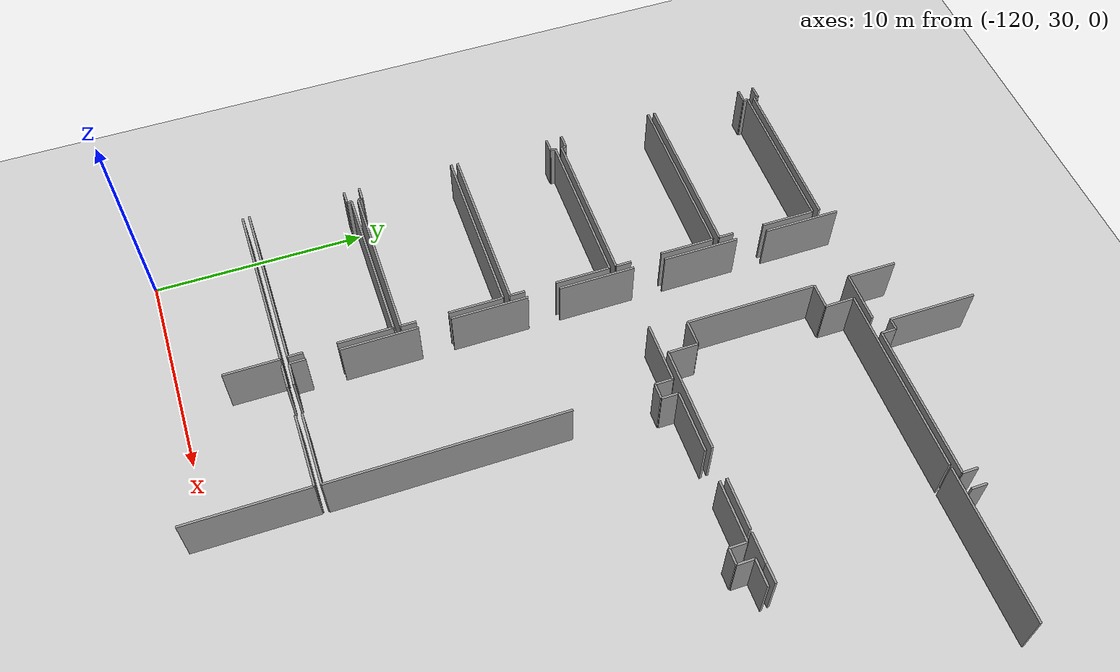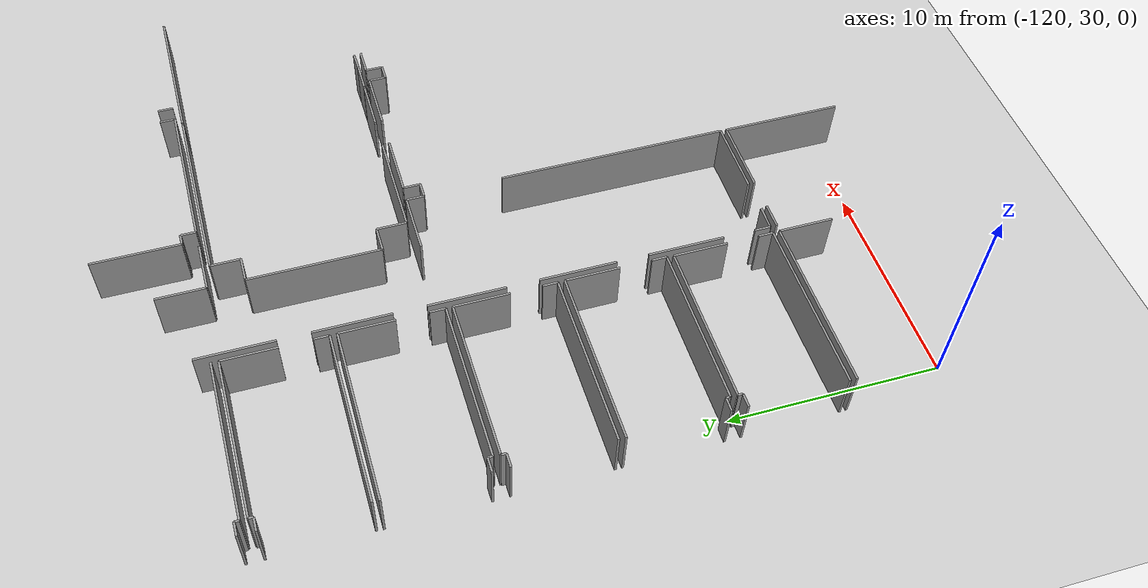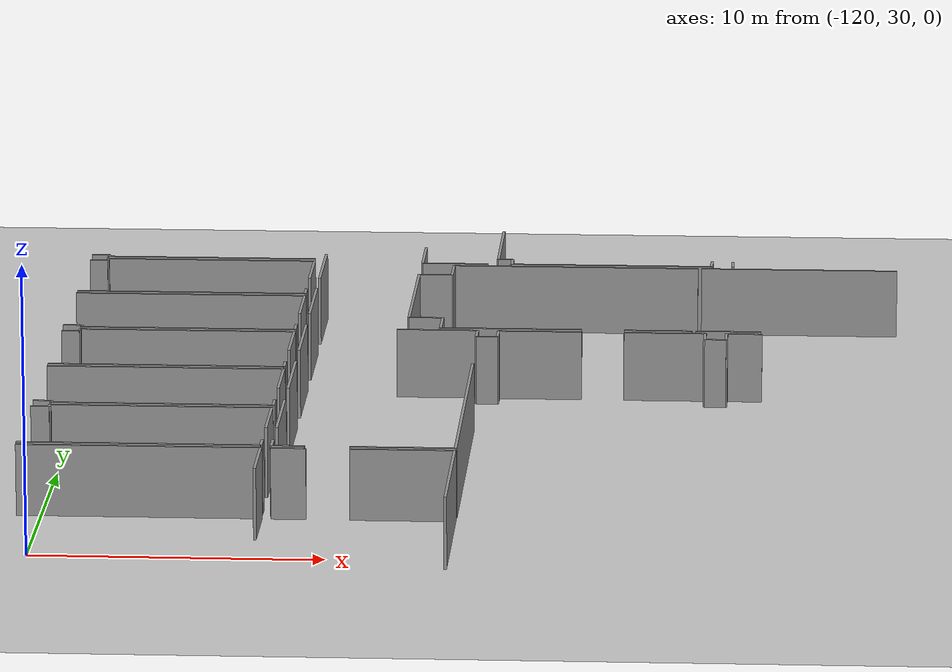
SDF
<sdf version="1.6">
 <world name="default">
  <model name="ground_plane">
   <static>1</static>
   <link name="link">
    <collision name="collision">
     <geometry><plane><normal>0 0 1</normal><size>100 100</size></plane></geometry>
     <surface><friction><ode><mu>100</mu><mu2>50</mu2></ode></friction></surface>
    </collision>
    <visual name="visual">
     <cast_shadows>0</cast_shadows>
     <geometry><plane><normal>0 0 1</normal><size>100 100</size></plane></geometry>
     <material>
      <script><uri>file://media/materials/scripts/gazebo.material</uri><name>Gazebo/Grey</name></script>
     </material>
    </visual>
   </link>
  </model>
  <model name="0510045922_A-40">
   <static>1</static>
   <link name="Wall_299">
    <collision name="Wall_299_Collision">
     <geometry><box><size>7.68761517443 0.1 2.5</size></box></geometry>
     <pose>3.84380758721 0 1.25 0 0 0</pose>
    </collision>
    <visual name="Wall_299_Visual">
     <pose>3.84380758721 0 1.25 0 0 0</pose>
     <geometry><box><size>7.68761517443 0.1 2.5</size></box></geometry>
     <material>
      <script><uri>file://media/materials/scripts/gazebo.material</uri><name>Gazebo/Grey</name></script>
      <ambient>1 1 1 1</ambient>
     </material>
    </visual>
    <pose>21.6092520811 -40.3864523098 0 0 0 3.14159265359</pose>
   </link>
   <link name="Wall_300">
    <collision name="Wall_300_Collision">
     <geometry><box><size>0.213509563449 0.1 2.5</size></box></geometry>
     <pose>0.106754781725 0 1.25 0 0 0</pose>
    </collision>
    <visual name="Wall_300_Visual">
     <pose>0.106754781725 0 1.25 0 0 0</pose>
     <geometry><box><size>0.213509563449 0.1 2.5</size></box></geometry>
     <material>
      <script><uri>file://media/materials/scripts/gazebo.material</uri><name>Gazebo/Grey</name></script>
      <ambient>1 1 1 1</ambient>
     </material>
    </visual>
    <pose>13.9216369067 -40.3864523098 0 0 0 1.57079632679</pose>
   </link>
   <link name="Wall_301">
    <collision name="Wall_301_Collision">
     <geometry><box><size>0.649199405681 0.1 2.5</size></box></geometry>
     <pose>0.324599702841 0 1.25 0 0 0</pose>
    </collision>
    <visual name="Wall_301_Visual">
     <pose>0.324599702841 0 1.25 0 0 0</pose>
     <geometry><box><size>0.649199405681 0.1 2.5</size></box></geometry>
     <material>
      <script><uri>file://media/materials/scripts/gazebo.material</uri><name>Gazebo/Grey</name></script>
      <ambient>1 1 1 1</ambient>
     </material>
    </visual>
    <pose>13.9216369067 -40.1729427464 0 0 0 -3.1321959059</pose>
   </link>
   <link name="Wall_302">
    <collision name="Wall_302_Collision">
     <geometry><box><size>0.656796085658 0.1 2.5</size></box></geometry>
     <pose>0.328398042829 0 1.25 0 0 0</pose>
    </collision>
    <visual name="Wall_302_Visual">
     <pose>0.328398042829 0 1.25 0 0 0</pose>
     <geometry><box><size>0.656796085658 0.1 2.5</size></box></geometry>
     <material>
      <script><uri>file://media/materials/scripts/gazebo.material</uri><name>Gazebo/Grey</name></script>
      <ambient>1 1 1 1</ambient>
     </material>
    </visual>
    <pose>13.2663658893 -40.9471690919 0 0 0 0.0</pose>
   </link>
   <link name="Wall_303">
    <collision name="Wall_303_Collision">
     <geometry><box><size>0.219101480587 0.1 2.5</size></box></geometry>
     <pose>0.109550740294 0 1.25 0 0 0</pose>
    </collision>
    <visual name="Wall_303_Visual">
     <pose>0.109550740294 0 1.25 0 0 0</pose>
     <geometry><box><size>0.219101480587 0.1 2.5</size></box></geometry>
     <material>
      <script><uri>file://media/materials/scripts/gazebo.material</uri><name>Gazebo/Grey</name></script>
      <ambient>1 1 1 1</ambient>
     </material>
    </visual>
    <pose>13.923161975 -40.9471690919 0 0 0 1.57079632679</pose>
   </link>
   <link name="Wall_304">
    <collision name="Wall_304_Collision">
     <geometry><box><size>7.66651839614 0.1 2.5</size></box></geometry>
     <pose>3.83325919807 0 1.25 0 0 0</pose>
    </collision>
    <visual name="Wall_304_Visual">
     <pose>3.83325919807 0 1.25 0 0 0</pose>
     <geometry><box><size>7.66651839614 0.1 2.5</size></box></geometry>
     <material>
      <script><uri>file://media/materials/scripts/gazebo.material</uri><name>Gazebo/Grey</name></script>
      <ambient>1 1 1 1</ambient>
     </material>
    </visual>
    <pose>13.923161975 -40.7280676114 0 0 0 0.0</pose>
   </link>
   <link name="Wall_305">
    <collision name="Wall_305_Collision">
     <geometry><box><size>2.56135222724 0.1 2.5</size></box></geometry>
     <pose>1.28067611362 0 1.25 0 0 0</pose>
    </collision>
    <visual name="Wall_305_Visual">
     <pose>1.28067611362 0 1.25 0 0 0</pose>
     <geometry><box><size>2.56135222724 0.1 2.5</size></box></geometry>
     <material>
      <script><uri>file://media/materials/scripts/gazebo.material</uri><name>Gazebo/Grey</name></script>
      <ambient>1 1 1 1</ambient>
     </material>
    </visual>
    <pose>21.5896803711 -40.7280676114 0 0 0 -1.57079632679</pose>
   </link>
   <link name="Wall_306">
    <collision name="Wall_306_Collision">
     <geometry><box><size>0.709665120417 0.1 2.5</size></box></geometry>
     <pose>0.354832560208 0 1.25 0 0 0</pose>
    </collision>
    <visual name="Wall_306_Visual">
     <pose>0.354832560208 0 1.25 0 0 0</pose>
     <geometry><box><size>0.709665120417 0.1 2.5</size></box></geometry>
     <material>
      <script><uri>file://media/materials/scripts/gazebo.material</uri><name>Gazebo/Grey</name></script>
      <ambient>1 1 1 1</ambient>
     </material>
    </visual>
    <pose>21.5896803711 -44.809912944 0 0 0 -1.57079632679</pose>
   </link>
   <link name="Wall_307">
    <collision name="Wall_307_Collision">
     <geometry><box><size>8.32332305504 0.1 2.5</size></box></geometry>
     <pose>4.16166152752 0 1.25 0 0 0</pose>
    </collision>
    <visual name="Wall_307_Visual">
     <pose>4.16166152752 0 1.25 0 0 0</pose>
     <geometry><box><size>8.32332305504 0.1 2.5</size></box></geometry>
     <material>
      <script><uri>file://media/materials/scripts/gazebo.material</uri><name>Gazebo/Grey</name></script>
      <ambient>1 1 1 1</ambient>
     </material>
    </visual>
    <pose>21.5896803711 -45.5195780644 0 0 0 -3.14015736477</pose>
   </link>
   <link name="Wall_308">
    <collision name="Wall_308_Collision">
     <geometry><box><size>8.34847810892 0.1 2.5</size></box></geometry>
     <pose>4.17423905446 0 1.25 0 0 0</pose>
    </collision>
    <visual name="Wall_308_Visual">
     <pose>4.17423905446 0 1.25 0 0 0</pose>
     <geometry><box><size>8.34847810892 0.1 2.5</size></box></geometry>
     <material>
      <script><uri>file://media/materials/scripts/gazebo.material</uri><name>Gazebo/Grey</name></script>
      <ambient>1 1 1 1</ambient>
     </material>
    </visual>
    <pose>13.2536569867 -45.8525513122 0 0 0 0.0</pose>
   </link>
   <link name="Wall_309">
    <collision name="Wall_309_Collision">
     <geometry><box><size>2.58219482748 0.1 2.5</size></box></geometry>
     <pose>1.29109741374 0 1.25 0 0 0</pose>
    </collision>
    <visual name="Wall_309_Visual">
     <pose>1.29109741374 0 1.25 0 0 0</pose>
     <geometry><box><size>2.58219482748 0.1 2.5</size></box></geometry>
     <material>
      <script><uri>file://media/materials/scripts/gazebo.material</uri><name>Gazebo/Grey</name></script>
      <ambient>1 1 1 1</ambient>
     </material>
    </visual>
    <pose>21.6021350956 -45.8525513122 0 0 0 -1.57079632679</pose>
   </link>
   <link name="Wall_310">
    <collision name="Wall_310_Collision">
     <geometry><box><size>0.740674842727 0.1 2.5</size></box></geometry>
     <pose>0.370337421364 0 1.25 0 0 0</pose>
    </collision>
    <visual name="Wall_310_Visual">
     <pose>0.370337421364 0 1.25 0 0 0</pose>
     <geometry><box><size>0.740674842727 0.1 2.5</size></box></geometry>
     <material>
      <script><uri>file://media/materials/scripts/gazebo.material</uri><name>Gazebo/Grey</name></script>
      <ambient>1 1 1 1</ambient>
     </material>
    </visual>
    <pose>21.6021350956 -49.9308381521 0 0 0 -1.57079632679</pose>
   </link>
   <link name="Wall_311">
    <collision name="Wall_311_Collision">
     <geometry><box><size>7.66423079367 0.1 2.5</size></box></geometry>
     <pose>3.83211539684 0 1.25 0 0 0</pose>
    </collision>
    <visual name="Wall_311_Visual">
     <pose>3.83211539684 0 1.25 0 0 0</pose>
     <geometry><box><size>7.66423079367 0.1 2.5</size></box></geometry>
     <material>
      <script><uri>file://media/materials/scripts/gazebo.material</uri><name>Gazebo/Grey</name></script>
      <ambient>1 1 1 1</ambient>
     </material>
    </visual>
    <pose>21.6021350956 -50.6715129949 0 0 0 3.14159265359</pose>
   </link>
   <link name="Wall_312">
    <collision name="Wall_312_Collision">
     <geometry><box><size>0.225964287984 0.1 2.5</size></box></geometry>
     <pose>0.112982143992 0 1.25 0 0 0</pose>
    </collision>
    <visual name="Wall_312_Visual">
     <pose>0.112982143992 0 1.25 0 0 0</pose>
     <geometry><box><size>0.225964287984 0.1 2.5</size></box></geometry>
     <material>
      <script><uri>file://media/materials/scripts/gazebo.material</uri><name>Gazebo/Grey</name></script>
      <ambient>1 1 1 1</ambient>
     </material>
    </visual>
    <pose>13.937904302 -50.6715129949 0 0 0 1.57079632679</pose>
   </link>
   <link name="Wall_313">
    <collision name="Wall_313_Collision">
     <geometry><box><size>0.684247362454 0.1 2.5</size></box></geometry>
     <pose>0.342123681227 0 1.25 0 0 0</pose>
    </collision>
    <visual name="Wall_313_Visual">
     <pose>0.342123681227 0 1.25 0 0 0</pose>
     <geometry><box><size>0.684247362454 0.1 2.5</size></box></geometry>
     <material>
      <script><uri>file://media/materials/scripts/gazebo.material</uri><name>Gazebo/Grey</name></script>
      <ambient>1 1 1 1</ambient>
     </material>
    </visual>
    <pose>13.937904302 -50.4455487069 0 0 0 3.14122118258</pose>
   </link>
   <link name="Wall_314">
    <collision name="Wall_314_Collision">
     <geometry><box><size>7.68659846222 0.1 2.5</size></box></geometry>
     <pose>3.84329923111 0 1.25 0 0 0</pose>
    </collision>
    <visual name="Wall_314_Visual">
     <pose>3.84329923111 0 1.25 0 0 0</pose>
     <geometry><box><size>7.68659846222 0.1 2.5</size></box></geometry>
     <material>
      <script><uri>file://media/materials/scripts/gazebo.material</uri><name>Gazebo/Grey</name></script>
      <ambient>1 1 1 1</ambient>
     </material>
    </visual>
    <pose>13.9196034822 -50.9856770668 0 0 0 0.0</pose>
   </link>
   <link name="Wall_315">
    <collision name="Wall_315_Collision">
     <geometry><box><size>2.61549215225 0.1 2.5</size></box></geometry>
     <pose>1.30774607613 0 1.25 0 0 0</pose>
    </collision>
    <visual name="Wall_315_Visual">
     <pose>1.30774607613 0 1.25 0 0 0</pose>
     <geometry><box><size>2.61549215225 0.1 2.5</size></box></geometry>
     <material>
      <script><uri>file://media/materials/scripts/gazebo.material</uri><name>Gazebo/Grey</name></script>
      <ambient>1 1 1 1</ambient>
     </material>
    </visual>
    <pose>21.6062019445 -50.9856770668 0 0 0 -1.57079632679</pose>
   </link>
   <link name="Wall_316">
    <collision name="Wall_316_Collision">
     <geometry><box><size>0.706106627693 0.1 2.5</size></box></geometry>
     <pose>0.353053313846 0 1.25 0 0 0</pose>
    </collision>
    <visual name="Wall_316_Visual">
     <pose>0.353053313846 0 1.25 0 0 0</pose>
     <geometry><box><size>0.706106627693 0.1 2.5</size></box></geometry>
     <material>
      <script><uri>file://media/materials/scripts/gazebo.material</uri><name>Gazebo/Grey</name></script>
      <ambient>1 1 1 1</ambient>
     </material>
    </visual>
    <pose>21.6062019445 -55.0919234924 0 0 0 -1.57079632679</pose>
   </link>
   <link name="Wall_317">
    <collision name="Wall_317_Collision">
     <geometry><box><size>8.33627756243 0.1 2.5</size></box></geometry>
     <pose>4.16813878122 0 1.25 0 0 0</pose>
    </collision>
    <visual name="Wall_317_Visual">
     <pose>4.16813878122 0 1.25 0 0 0</pose>
     <geometry><box><size>8.33627756243 0.1 2.5</size></box></geometry>
     <material>
      <script><uri>file://media/materials/scripts/gazebo.material</uri><name>Gazebo/Grey</name></script>
      <ambient>1 1 1 1</ambient>
     </material>
    </visual>
    <pose>21.6062019445 -55.7980301201 0 0 0 3.14159265359</pose>
   </link>
   <link name="Wall_318">
    <collision name="Wall_318_Collision">
     <geometry><box><size>0.644341361123 0.1 2.5</size></box></geometry>
     <pose>0.322170680562 0 1.25 0 0 0</pose>
    </collision>
    <visual name="Wall_318_Visual">
     <pose>0.322170680562 0 1.25 0 0 0</pose>
     <geometry><box><size>0.644341361123 0.1 2.5</size></box></geometry>
     <material>
      <script><uri>file://media/materials/scripts/gazebo.material</uri><name>Gazebo/Grey</name></script>
      <ambient>1 1 1 1</ambient>
     </material>
    </visual>
    <pose>13.269924382 -51.227654572 0 0 0 0.0</pose>
   </link>
   <link name="Wall_319">
    <collision name="Wall_319_Collision">
     <geometry><box><size>0.242036370205 0.1 2.5</size></box></geometry>
     <pose>0.121018185102 0 1.25 0 0 0</pose>
    </collision>
    <visual name="Wall_319_Visual">
     <pose>0.121018185102 0 1.25 0 0 0</pose>
     <geometry><box><size>0.242036370205 0.1 2.5</size></box></geometry>
     <material>
      <script><uri>file://media/materials/scripts/gazebo.material</uri><name>Gazebo/Grey</name></script>
      <ambient>1 1 1 1</ambient>
     </material>
    </visual>
    <pose>13.9142657432 -51.227654572 0 0 0 1.5487410801</pose>
   </link>
   <link name="Wall_320">
    <collision name="Wall_320_Collision">
     <geometry><box><size>8.35839105293 0.1 2.5</size></box></geometry>
     <pose>4.17919552647 0 1.25 0 0 0</pose>
    </collision>
    <visual name="Wall_320_Visual">
     <pose>4.17919552647 0 1.25 0 0 0</pose>
     <geometry><box><size>8.35839105293 0.1 2.5</size></box></geometry>
     <material>
      <script><uri>file://media/materials/scripts/gazebo.material</uri><name>Gazebo/Grey</name></script>
      <ambient>1 1 1 1</ambient>
     </material>
    </visual>
    <pose>13.2640782868 -56.1188028214 0 0 0 0.0</pose>
   </link>
   <link name="Wall_321">
    <collision name="Wall_321_Collision">
     <geometry><box><size>2.58219482748 0.1 2.5</size></box></geometry>
     <pose>1.29109741374 0 1.25 0 0 0</pose>
    </collision>
    <visual name="Wall_321_Visual">
     <pose>1.29109741374 0 1.25 0 0 0</pose>
     <geometry><box><size>2.58219482748 0.1 2.5</size></box></geometry>
     <material>
      <script><uri>file://media/materials/scripts/gazebo.material</uri><name>Gazebo/Grey</name></script>
      <ambient>1 1 1 1</ambient>
     </material>
    </visual>
    <pose>21.6224693398 -56.1188028214 0 0 0 -1.57079632679</pose>
   </link>
   <link name="Wall_322">
    <collision name="Wall_322_Collision">
     <geometry><box><size>0.716782105865 0.1 2.5</size></box></geometry>
     <pose>0.358391052933 0 1.25 0 0 0</pose>
    </collision>
    <visual name="Wall_322_Visual">
     <pose>0.358391052933 0 1.25 0 0 0</pose>
     <geometry><box><size>0.716782105865 0.1 2.5</size></box></geometry>
     <material>
      <script><uri>file://media/materials/scripts/gazebo.material</uri><name>Gazebo/Grey</name></script>
      <ambient>1 1 1 1</ambient>
     </material>
    </visual>
    <pose>21.6224693398 -60.2082734956 0 0 0 -1.57079632679</pose>
   </link>
   <link name="Wall_323">
    <collision name="Wall_323_Collision">
     <geometry><box><size>7.69651140624 0.1 2.5</size></box></geometry>
     <pose>3.84825570312 0 1.25 0 0 0</pose>
    </collision>
    <visual name="Wall_323_Visual">
     <pose>3.84825570312 0 1.25 0 0 0</pose>
     <geometry><box><size>7.69651140624 0.1 2.5</size></box></geometry>
     <material>
      <script><uri>file://media/materials/scripts/gazebo.material</uri><name>Gazebo/Grey</name></script>
      <ambient>1 1 1 1</ambient>
     </material>
    </visual>
    <pose>21.6224693398 -60.9250556014 0 0 0 3.14159265359</pose>
   </link>
   <link name="Wall_324">
    <collision name="Wall_324_Collision">
     <geometry><box><size>0.200546482811 0.1 2.5</size></box></geometry>
     <pose>0.100273241406 0 1.25 0 0 0</pose>
    </collision>
    <visual name="Wall_324_Visual">
     <pose>0.100273241406 0 1.25 0 0 0</pose>
     <geometry><box><size>0.200546482811 0.1 2.5</size></box></geometry>
     <material>
      <script><uri>file://media/materials/scripts/gazebo.material</uri><name>Gazebo/Grey</name></script>
      <ambient>1 1 1 1</ambient>
     </material>
    </visual>
    <pose>13.9259579335 -60.9250556014 0 0 0 1.57079632679</pose>
   </link>
   <link name="Wall_325">
    <collision name="Wall_325_Collision">
     <geometry><box><size>0.661957730582 0.1 2.5</size></box></geometry>
     <pose>0.330978865291 0 1.25 0 0 0</pose>
    </collision>
    <visual name="Wall_325_Visual">
     <pose>0.330978865291 0 1.25 0 0 0</pose>
     <geometry><box><size>0.661957730582 0.1 2.5</size></box></geometry>
     <material>
      <script><uri>file://media/materials/scripts/gazebo.material</uri><name>Gazebo/Grey</name></script>
      <ambient>1 1 1 1</ambient>
     </material>
    </visual>
    <pose>13.9259579335 -60.7245091186 0 0 0 3.12623287851</pose>
   </link>
   <link name="Wall_326">
    <collision name="Wall_326_Collision">
     <geometry><box><size>7.68278579145 0.1 2.5</size></box></geometry>
     <pose>3.84139289572 0 1.25 0 0 0</pose>
    </collision>
    <visual name="Wall_326_Visual">
     <pose>3.84139289572 0 1.25 0 0 0</pose>
     <geometry><box><size>7.68278579145 0.1 2.5</size></box></geometry>
     <material>
      <script><uri>file://media/materials/scripts/gazebo.material</uri><name>Gazebo/Grey</name></script>
      <ambient>1 1 1 1</ambient>
     </material>
    </visual>
    <pose>13.9147740993 -61.247353371 0 0 0 0.0</pose>
   </link>
   <link name="Wall_327">
    <collision name="Wall_327_Collision">
     <geometry><box><size>2.58397407384 0.1 2.5</size></box></geometry>
     <pose>1.29198703692 0 1.25 0 0 0</pose>
    </collision>
    <visual name="Wall_327_Visual">
     <pose>1.29198703692 0 1.25 0 0 0</pose>
     <geometry><box><size>2.58397407384 0.1 2.5</size></box></geometry>
     <material>
      <script><uri>file://media/materials/scripts/gazebo.material</uri><name>Gazebo/Grey</name></script>
      <ambient>1 1 1 1</ambient>
     </material>
    </visual>
    <pose>21.5975598907 -61.247353371 0 0 0 -1.57079632679</pose>
   </link>
   <link name="Wall_328">
    <collision name="Wall_328_Collision">
     <geometry><box><size>0.694668615365 0.1 2.5</size></box></geometry>
     <pose>0.347334307683 0 1.25 0 0 0</pose>
    </collision>
    <visual name="Wall_328_Visual">
     <pose>0.347334307683 0 1.25 0 0 0</pose>
     <geometry><box><size>0.694668615365 0.1 2.5</size></box></geometry>
     <material>
      <script><uri>file://media/materials/scripts/gazebo.material</uri><name>Gazebo/Grey</name></script>
      <ambient>1 1 1 1</ambient>
     </material>
    </visual>
    <pose>21.5975598907 -65.3571582894 0 0 0 -1.57079632679</pose>
   </link>
   <link name="Wall_329">
    <collision name="Wall_329_Collision">
     <geometry><box><size>8.32839804283 0.1 2.5</size></box></geometry>
     <pose>4.16419902141 0 1.25 0 0 0</pose>
    </collision>
    <visual name="Wall_329_Visual">
     <pose>4.16419902141 0 1.25 0 0 0</pose>
     <geometry><box><size>8.32839804283 0.1 2.5</size></box></geometry>
     <material>
      <script><uri>file://media/materials/scripts/gazebo.material</uri><name>Gazebo/Grey</name></script>
      <ambient>1 1 1 1</ambient>
     </material>
    </visual>
    <pose>21.5975598907 -66.0518269047 0 0 0 3.14159265359</pose>
   </link>
   <link name="Wall_330">
    <collision name="Wall_330_Collision">
     <geometry><box><size>0.644595539175 0.1 2.5</size></box></geometry>
     <pose>0.322297769588 0 1.25 0 0 0</pose>
    </collision>
    <visual name="Wall_330_Visual">
     <pose>0.322297769588 0 1.25 0 0 0</pose>
     <geometry><box><size>0.644595539175 0.1 2.5</size></box></geometry>
     <material>
      <script><uri>file://media/materials/scripts/gazebo.material</uri><name>Gazebo/Grey</name></script>
      <ambient>1 1 1 1</ambient>
     </material>
    </visual>
    <pose>13.2691618479 -61.4702675224 0 0 0 0.0</pose>
   </link>
   <link name="Wall_331">
    <collision name="Wall_331_Collision">
     <geometry><box><size>0.222916469965 0.1 2.5</size></box></geometry>
     <pose>0.111458234982 0 1.25 0 0 0</pose>
    </collision>
    <visual name="Wall_331_Visual">
     <pose>0.111458234982 0 1.25 0 0 0</pose>
     <geometry><box><size>0.222916469965 0.1 2.5</size></box></geometry>
     <material>
      <script><uri>file://media/materials/scripts/gazebo.material</uri><name>Gazebo/Grey</name></script>
      <ambient>1 1 1 1</ambient>
     </material>
    </visual>
    <pose>13.913757387 -61.4702675224 0 0 0 1.566235355</pose>
   </link>
   <link name="Wall_386">
    <collision name="Wall_386_Collision">
     <geometry><box><size>2.43502573553 0.1 2.5</size></box></geometry>
     <pose>1.21751286776 0 1.25 0 0 0</pose>
    </collision>
    <visual name="Wall_386_Visual">
     <pose>1.21751286776 0 1.25 0 0 0</pose>
     <geometry><box><size>2.43502573553 0.1 2.5</size></box></geometry>
     <material>
      <script><uri>file://media/materials/scripts/gazebo.material</uri><name>Gazebo/Grey</name></script>
      <ambient>1 1 1 1</ambient>
     </material>
    </visual>
    <pose>28.0473279532 -40.8086420538 0 0 0 3.14159265359</pose>
   </link>
   <link name="Wall_387">
    <collision name="Wall_387_Collision">
     <geometry><box><size>2.33386287094 0.1 2.5</size></box></geometry>
     <pose>1.16693143547 0 1.25 0 0 0</pose>
    </collision>
    <visual name="Wall_387_Visual">
     <pose>1.16693143547 0 1.25 0 0 0</pose>
     <geometry><box><size>2.33386287094 0.1 2.5</size></box></geometry>
     <material>
      <script><uri>file://media/materials/scripts/gazebo.material</uri><name>Gazebo/Grey</name></script>
      <ambient>1 1 1 1</ambient>
     </material>
    </visual>
    <pose>25.6123022177 -40.8086420538 0 0 0 1.57079632679</pose>
   </link>
   <link name="Wall_389">
    <collision name="Wall_389_Collision">
     <geometry><box><size>6.23066658194 0.1 2.5</size></box></geometry>
     <pose>3.11533329097 0 1.25 0 0 0</pose>
    </collision>
    <visual name="Wall_389_Visual">
     <pose>3.11533329097 0 1.25 0 0 0</pose>
     <geometry><box><size>6.23066658194 0.1 2.5</size></box></geometry>
     <material>
      <script><uri>file://media/materials/scripts/gazebo.material</uri><name>Gazebo/Grey</name></script>
      <ambient>1 1 1 1</ambient>
     </material>
    </visual>
    <pose>25.584088454 -48.7428099384 0 0 0 1.57079632679</pose>
   </link>
   <link name="Wall_390">
    <collision name="Wall_390_Collision">
     <geometry><box><size>1.21217512868 0.1 2.5</size></box></geometry>
     <pose>0.606087564339 0 1.25 0 0 0</pose>
    </collision>
    <visual name="Wall_390_Visual">
     <pose>0.606087564339 0 1.25 0 0 0</pose>
     <geometry><box><size>1.21217512868 0.1 2.5</size></box></geometry>
     <material>
      <script><uri>file://media/materials/scripts/gazebo.material</uri><name>Gazebo/Grey</name></script>
      <ambient>1 1 1 1</ambient>
     </material>
    </visual>
    <pose>25.584088454 -42.5121433564 0 0 0 0.0</pose>
   </link>
   <link name="Wall_391">
    <collision name="Wall_391_Collision">
     <geometry><box><size>1.39391243566 0.1 2.5</size></box></geometry>
     <pose>0.696956217831 0 1.25 0 0 0</pose>
    </collision>
    <visual name="Wall_391_Visual">
     <pose>0.696956217831 0 1.25 0 0 0</pose>
     <geometry><box><size>1.39391243566 0.1 2.5</size></box></geometry>
     <material>
      <script><uri>file://media/materials/scripts/gazebo.material</uri><name>Gazebo/Grey</name></script>
      <ambient>1 1 1 1</ambient>
     </material>
    </visual>
    <pose>26.7962635826 -42.5121433564 0 0 0 1.57079632679</pose>
   </link>
   <link name="Wall_392">
    <collision name="Wall_392_Collision">
     <geometry><box><size>9.01798309716 0.1 2.5</size></box></geometry>
     <pose>4.50899154858 0 1.25 0 0 0</pose>
    </collision>
    <visual name="Wall_392_Visual">
     <pose>4.50899154858 0 1.25 0 0 0</pose>
     <geometry><box><size>9.01798309716 0.1 2.5</size></box></geometry>
     <material>
      <script><uri>file://media/materials/scripts/gazebo.material</uri><name>Gazebo/Grey</name></script>
      <ambient>1 1 1 1</ambient>
     </material>
    </visual>
    <pose>26.7962635826 -41.1182309208 0 0 0 0.0</pose>
   </link>
   <link name="Wall_393">
    <collision name="Wall_393_Collision">
     <geometry><box><size>2.43375484527 0.1 2.5</size></box></geometry>
     <pose>1.21687742263 0 1.25 0 0 0</pose>
    </collision>
    <visual name="Wall_393_Visual">
     <pose>1.21687742263 0 1.25 0 0 0</pose>
     <geometry><box><size>2.43375484527 0.1 2.5</size></box></geometry>
     <material>
      <script><uri>file://media/materials/scripts/gazebo.material</uri><name>Gazebo/Grey</name></script>
      <ambient>1 1 1 1</ambient>
     </material>
    </visual>
    <pose>35.8142466798 -50.151210523 0 0 0 3.14159265359</pose>
   </link>
   <link name="Wall_394">
    <collision name="Wall_394_Collision">
     <geometry><box><size>5.04823028531 0.1 2.5</size></box></geometry>
     <pose>2.52411514266 0 1.25 0 0 0</pose>
    </collision>
    <visual name="Wall_394_Visual">
     <pose>2.52411514266 0 1.25 0 0 0</pose>
     <geometry><box><size>5.04823028531 0.1 2.5</size></box></geometry>
     <material>
      <script><uri>file://media/materials/scripts/gazebo.material</uri><name>Gazebo/Grey</name></script>
      <ambient>1 1 1 1</ambient>
     </material>
    </visual>
    <pose>31.8521192095 -50.151210523 0 0 0 3.14159265359</pose>
   </link>
   <link name="Wall_395">
    <collision name="Wall_395_Collision">
     <geometry><box><size>1.41272161149 0.1 2.5</size></box></geometry>
     <pose>0.706360805744 0 1.25 0 0 0</pose>
    </collision>
    <visual name="Wall_395_Visual">
     <pose>0.706360805744 0 1.25 0 0 0</pose>
     <geometry><box><size>1.41272161149 0.1 2.5</size></box></geometry>
     <material>
      <script><uri>file://media/materials/scripts/gazebo.material</uri><name>Gazebo/Grey</name></script>
      <ambient>1 1 1 1</ambient>
     </material>
    </visual>
    <pose>26.8038889242 -50.151210523 0 0 0 1.57079632679</pose>
   </link>
   <link name="Wall_396">
    <collision name="Wall_396_Collision">
     <geometry><box><size>1.21980812362 0.1 2.5</size></box></geometry>
     <pose>0.609904061809 0 1.25 0 0 0</pose>
    </collision>
    <visual name="Wall_396_Visual">
     <pose>0.609904061809 0 1.25 0 0 0</pose>
     <geometry><box><size>1.21980812362 0.1 2.5</size></box></geometry>
     <material>
      <script><uri>file://media/materials/scripts/gazebo.material</uri><name>Gazebo/Grey</name></script>
      <ambient>1 1 1 1</ambient>
     </material>
    </visual>
    <pose>26.8038889242 -48.7384889115 0 0 0 -3.13805026374</pose>
   </link>
   <link name="Wall_397">
    <collision name="Wall_397_Collision">
     <geometry><box><size>1.44779818263 0.1 2.5</size></box></geometry>
     <pose>0.723899091313 0 1.25 0 0 0</pose>
    </collision>
    <visual name="Wall_397_Visual">
     <pose>0.723899091313 0 1.25 0 0 0</pose>
     <geometry><box><size>1.44779818263 0.1 2.5</size></box></geometry>
     <material>
      <script><uri>file://media/materials/scripts/gazebo.material</uri><name>Gazebo/Grey</name></script>
      <ambient>1 1 1 1</ambient>
     </material>
    </visual>
    <pose>37.3952341615 -50.1555315499 0 0 0 3.14159265359</pose>
   </link>
   <link name="Wall_398">
    <collision name="Wall_398_Collision">
     <geometry><box><size>7.20162673953 0.1 2.5</size></box></geometry>
     <pose>3.60081336977 0 1.25 0 0 0</pose>
    </collision>
    <visual name="Wall_398_Visual">
     <pose>3.60081336977 0 1.25 0 0 0</pose>
     <geometry><box><size>7.20162673953 0.1 2.5</size></box></geometry>
     <material>
      <script><uri>file://media/materials/scripts/gazebo.material</uri><name>Gazebo/Grey</name></script>
      <ambient>1 1 1 1</ambient>
     </material>
    </visual>
    <pose>35.9474359789 -41.1134015378 0 0 0 0.0</pose>
   </link>
   <link name="Wall_405">
    <collision name="Wall_405_Collision">
     <geometry><box><size>0.895965914827 0.1 2.5</size></box></geometry>
     <pose>0.447982957413 0 1.25 0 0 0</pose>
    </collision>
    <visual name="Wall_405_Visual">
     <pose>0.447982957413 0 1.25 0 0 0</pose>
     <geometry><box><size>0.895965914827 0.1 2.5</size></box></geometry>
     <material>
      <script><uri>file://media/materials/scripts/gazebo.material</uri><name>Gazebo/Grey</name></script>
      <ambient>1 1 1 1</ambient>
     </material>
    </visual>
    <pose>38.2909576158 -50.1346889496 0 0 0 -3.11832783939</pose>
   </link>
   <link name="Wall_436">
    <collision name="Wall_436_Collision">
     <geometry><box><size>4.17792463621 0.1 2.5</size></box></geometry>
     <pose>2.0889623181 0 1.25 0 0 0</pose>
    </collision>
    <visual name="Wall_436_Visual">
     <pose>2.0889623181 0 1.25 0 0 0</pose>
     <geometry><box><size>4.17792463621 0.1 2.5</size></box></geometry>
     <material>
      <script><uri>file://media/materials/scripts/gazebo.material</uri><name>Gazebo/Grey</name></script>
      <ambient>1 1 1 1</ambient>
     </material>
    </visual>
    <pose>28.3861472962 -40.0796594014 0 0 0 1.57079632679</pose>
   </link>
   <link name="Wall_441">
    <collision name="Wall_441_Collision">
     <geometry><box><size>0.727965940141 0.1 2.5</size></box></geometry>
     <pose>0.363982970071 0 1.25 0 0 0</pose>
    </collision>
    <visual name="Wall_441_Visual">
     <pose>0.363982970071 0 1.25 0 0 0</pose>
     <geometry><box><size>0.727965940141 0.1 2.5</size></box></geometry>
     <material>
      <script><uri>file://media/materials/scripts/gazebo.material</uri><name>Gazebo/Grey</name></script>
      <ambient>1 1 1 1</ambient>
     </material>
    </visual>
    <pose>37.0820868018 -40.8010167122 0 0 0 1.57079632679</pose>
   </link>
   <link name="Wall_443">
    <collision name="Wall_443_Collision">
     <geometry><box><size>0.722119844951 0.1 2.5</size></box></geometry>
     <pose>0.361059922476 0 1.25 0 0 0</pose>
    </collision>
    <visual name="Wall_443_Visual">
     <pose>0.361059922476 0 1.25 0 0 0</pose>
     <geometry><box><size>0.722119844951 0.1 2.5</size></box></geometry>
     <material>
      <script><uri>file://media/materials/scripts/gazebo.material</uri><name>Gazebo/Grey</name></script>
      <ambient>1 1 1 1</ambient>
     </material>
    </visual>
    <pose>36.3076062782 -40.0730507721 0 0 0 -1.57079632679</pose>
   </link>
   <link name="Wall_444">
    <collision name="Wall_444_Collision">
     <geometry><box><size>7.39022685391 0.1 2.5</size></box></geometry>
     <pose>3.69511342696 0 1.25 0 0 0</pose>
    </collision>
    <visual name="Wall_444_Visual">
     <pose>3.69511342696 0 1.25 0 0 0</pose>
     <geometry><box><size>7.39022685391 0.1 2.5</size></box></geometry>
     <material>
      <script><uri>file://media/materials/scripts/gazebo.material</uri><name>Gazebo/Grey</name></script>
      <ambient>1 1 1 1</ambient>
     </material>
    </visual>
    <pose>36.3076062782 -40.795170617 0 0 0 3.14159265359</pose>
   </link>
   <link name="Wall_445">
    <collision name="Wall_445_Collision">
     <geometry><box><size>0.715257037555 0.1 2.5</size></box></geometry>
     <pose>0.357628518777 0 1.25 0 0 0</pose>
    </collision>
    <visual name="Wall_445_Visual">
     <pose>0.357628518777 0 1.25 0 0 0</pose>
     <geometry><box><size>0.715257037555 0.1 2.5</size></box></geometry>
     <material>
      <script><uri>file://media/materials/scripts/gazebo.material</uri><name>Gazebo/Grey</name></script>
      <ambient>1 1 1 1</ambient>
     </material>
    </visual>
    <pose>28.9173794243 -40.795170617 0 0 0 1.57079632679</pose>
   </link>
   <link name="Wall_446">
    <collision name="Wall_446_Collision">
     <geometry><box><size>0.531232188914 0.1 2.5</size></box></geometry>
     <pose>0.265616094457 0 1.25 0 0 0</pose>
    </collision>
    <visual name="Wall_446_Visual">
     <pose>0.265616094457 0 1.25 0 0 0</pose>
     <geometry><box><size>0.531232188914 0.1 2.5</size></box></geometry>
     <material>
      <script><uri>file://media/materials/scripts/gazebo.material</uri><name>Gazebo/Grey</name></script>
      <ambient>1 1 1 1</ambient>
     </material>
    </visual>
    <pose>28.9173794243 -40.0799135795 0 0 0 3.14111418473</pose>
   </link>
   <link name="Wall_469">
    <collision name="Wall_469_Collision">
     <geometry><box><size>0.753892101417 0.1 2.5</size></box></geometry>
     <pose>0.376946050709 0 1.25 0 0 0</pose>
    </collision>
    <visual name="Wall_469_Visual">
     <pose>0.376946050709 0 1.25 0 0 0</pose>
     <geometry><box><size>0.753892101417 0.1 2.5</size></box></geometry>
     <material>
      <script><uri>file://media/materials/scripts/gazebo.material</uri><name>Gazebo/Grey</name></script>
      <ambient>1 1 1 1</ambient>
     </material>
    </visual>
    <pose>21.9617970388 -66.0708902586 0 0 0 1.57079632679</pose>
   </link>
   <link name="Wall_470">
    <collision name="Wall_470_Collision">
     <geometry><box><size>3.61059922476 0.1 2.5</size></box></geometry>
     <pose>1.80529961238 0 1.25 0 0 0</pose>
    </collision>
    <visual name="Wall_470_Visual">
     <pose>1.80529961238 0 1.25 0 0 0</pose>
     <geometry><box><size>3.61059922476 0.1 2.5</size></box></geometry>
     <material>
      <script><uri>file://media/materials/scripts/gazebo.material</uri><name>Gazebo/Grey</name></script>
      <ambient>1 1 1 1</ambient>
     </material>
    </visual>
    <pose>21.9617970388 -63.797521764 0 0 0 1.57079632679</pose>
   </link>
   <link name="Wall_471">
    <collision name="Wall_471_Collision">
     <geometry><box><size>3.63093346889 0.1 2.5</size></box></geometry>
     <pose>1.81546673445 0 1.25 0 0 0</pose>
    </collision>
    <visual name="Wall_471_Visual">
     <pose>1.81546673445 0 1.25 0 0 0</pose>
     <geometry><box><size>3.63093346889 0.1 2.5</size></box></geometry>
     <material>
      <script><uri>file://media/materials/scripts/gazebo.material</uri><name>Gazebo/Grey</name></script>
      <ambient>1 1 1 1</ambient>
     </material>
    </visual>
    <pose>21.9617970388 -58.6778674461 0 0 0 1.57079632679</pose>
   </link>
   <link name="Wall_472">
    <collision name="Wall_472_Collision">
     <geometry><box><size>3.61695367605 0.1 2.5</size></box></geometry>
     <pose>1.80847683803 0 1.25 0 0 0</pose>
    </collision>
    <visual name="Wall_472_Visual">
     <pose>1.80847683803 0 1.25 0 0 0</pose>
     <geometry><box><size>3.61695367605 0.1 2.5</size></box></geometry>
     <material>
      <script><uri>file://media/materials/scripts/gazebo.material</uri><name>Gazebo/Grey</name></script>
      <ambient>1 1 1 1</ambient>
     </material>
    </visual>
    <pose>21.9617970388 -53.536862172 0 0 0 1.57079632679</pose>
   </link>
   <link name="Wall_473">
    <collision name="Wall_473_Collision">
     <geometry><box><size>3.61695367605 0.1 2.5</size></box></geometry>
     <pose>1.80847683803 0 1.25 0 0 0</pose>
    </collision>
    <visual name="Wall_473_Visual">
     <pose>1.80847683803 0 1.25 0 0 0</pose>
     <geometry><box><size>3.61695367605 0.1 2.5</size></box></geometry>
     <material>
      <script><uri>file://media/materials/scripts/gazebo.material</uri><name>Gazebo/Grey</name></script>
      <ambient>1 1 1 1</ambient>
     </material>
    </visual>
    <pose>21.9617970388 -48.3978903222 0 0 0 1.57079632679</pose>
   </link>
   <link name="Wall_474">
    <collision name="Wall_474_Collision">
     <geometry><box><size>3.62127470293 0.1 2.5</size></box></geometry>
     <pose>1.81063735146 0 1.25 0 0 0</pose>
    </collision>
    <visual name="Wall_474_Visual">
     <pose>1.81063735146 0 1.25 0 0 0</pose>
     <geometry><box><size>3.62127470293 0.1 2.5</size></box></geometry>
     <material>
      <script><uri>file://media/materials/scripts/gazebo.material</uri><name>Gazebo/Grey</name></script>
      <ambient>1 1 1 1</ambient>
     </material>
    </visual>
    <pose>21.9617970388 -43.2754400458 0 0 0 1.57079632679</pose>
   </link>
   <link name="Wall_485">
    <collision name="Wall_485_Collision">
     <geometry><box><size>2.89508800915 0.1 2.5</size></box></geometry>
     <pose>1.44754400458 0 1.25 0 0 0</pose>
    </collision>
    <visual name="Wall_485_Visual">
     <pose>1.44754400458 0 1.25 0 0 0</pose>
     <geometry><box><size>2.89508800915 0.1 2.5</size></box></geometry>
     <material>
      <script><uri>file://media/materials/scripts/gazebo.material</uri><name>Gazebo/Grey</name></script>
      <ambient>1 1 1 1</ambient>
     </material>
    </visual>
    <pose>25.2508610282 -50.455970007 0 0 0 0.0</pose>
   </link>
   <link name="Wall_486">
    <collision name="Wall_486_Collision">
     <geometry><box><size>0.841329351211 0.1 2.5</size></box></geometry>
     <pose>0.420664675605 0 1.25 0 0 0</pose>
    </collision>
    <visual name="Wall_486_Visual">
     <pose>0.420664675605 0 1.25 0 0 0</pose>
     <geometry><box><size>0.841329351211 0.1 2.5</size></box></geometry>
     <material>
      <script><uri>file://media/materials/scripts/gazebo.material</uri><name>Gazebo/Grey</name></script>
      <ambient>1 1 1 1</ambient>
     </material>
    </visual>
    <pose>28.1459490373 -50.455970007 0 0 0 -1.57079632679</pose>
   </link>
   <link name="Wall_487">
    <collision name="Wall_487_Collision">
     <geometry><box><size>0.753892101417 0.1 2.5</size></box></geometry>
     <pose>0.376946050709 0 1.25 0 0 0</pose>
    </collision>
    <visual name="Wall_487_Visual">
     <pose>0.376946050709 0 1.25 0 0 0</pose>
     <geometry><box><size>0.753892101417 0.1 2.5</size></box></geometry>
     <material>
      <script><uri>file://media/materials/scripts/gazebo.material</uri><name>Gazebo/Grey</name></script>
      <ambient>1 1 1 1</ambient>
     </material>
    </visual>
    <pose>28.1459490373 -51.2972993582 0 0 0 0.0</pose>
   </link>
   <link name="Wall_488">
    <collision name="Wall_488_Collision">
     <geometry><box><size>0.808540382538 0.1 2.5</size></box></geometry>
     <pose>0.404270191269 0 1.25 0 0 0</pose>
    </collision>
    <visual name="Wall_488_Visual">
     <pose>0.404270191269 0 1.25 0 0 0</pose>
     <geometry><box><size>0.808540382538 0.1 2.5</size></box></geometry>
     <material>
      <script><uri>file://media/materials/scripts/gazebo.material</uri><name>Gazebo/Grey</name></script>
      <ambient>1 1 1 1</ambient>
     </material>
    </visual>
    <pose>28.8998411387 -51.2972993582 0 0 0 1.57079632679</pose>
   </link>
   <link name="Wall_489">
    <collision name="Wall_489_Collision">
     <geometry><box><size>2.98837135413 0.1 2.5</size></box></geometry>
     <pose>1.49418567707 0 1.25 0 0 0</pose>
    </collision>
    <visual name="Wall_489_Visual">
     <pose>1.49418567707 0 1.25 0 0 0</pose>
     <geometry><box><size>2.98837135413 0.1 2.5</size></box></geometry>
     <material>
      <script><uri>file://media/materials/scripts/gazebo.material</uri><name>Gazebo/Grey</name></script>
      <ambient>1 1 1 1</ambient>
     </material>
    </visual>
    <pose>28.8998411387 -50.4887589757 0 0 0 0.0</pose>
   </link>
   <link name="Wall_490">
    <collision name="Wall_490_Collision">
     <geometry><box><size>2.90322170681 0.1 2.5</size></box></geometry>
     <pose>1.4516108534 0 1.25 0 0 0</pose>
    </collision>
    <visual name="Wall_490_Visual">
     <pose>1.4516108534 0 1.25 0 0 0</pose>
     <geometry><box><size>2.90322170681 0.1 2.5</size></box></geometry>
     <material>
      <script><uri>file://media/materials/scripts/gazebo.material</uri><name>Gazebo/Grey</name></script>
      <ambient>1 1 1 1</ambient>
     </material>
    </visual>
    <pose>33.3929465591 -50.4887589757 0 0 0 0.0</pose>
   </link>
   <link name="Wall_491">
    <collision name="Wall_491_Collision">
     <geometry><box><size>0.817436614348 0.1 2.5</size></box></geometry>
     <pose>0.408718307174 0 1.25 0 0 0</pose>
    </collision>
    <visual name="Wall_491_Visual">
     <pose>0.408718307174 0 1.25 0 0 0</pose>
     <geometry><box><size>0.817436614348 0.1 2.5</size></box></geometry>
     <material>
      <script><uri>file://media/materials/scripts/gazebo.material</uri><name>Gazebo/Grey</name></script>
      <ambient>1 1 1 1</ambient>
     </material>
    </visual>
    <pose>36.2961682659 -50.4887589757 0 0 0 -1.57079632679</pose>
   </link>
   <link name="Wall_492">
    <collision name="Wall_492_Collision">
     <geometry><box><size>0.763550867383 0.1 2.5</size></box></geometry>
     <pose>0.381775433691 0 1.25 0 0 0</pose>
    </collision>
    <visual name="Wall_492_Visual">
     <pose>0.381775433691 0 1.25 0 0 0</pose>
     <geometry><box><size>0.763550867383 0.1 2.5</size></box></geometry>
     <material>
      <script><uri>file://media/materials/scripts/gazebo.material</uri><name>Gazebo/Grey</name></script>
      <ambient>1 1 1 1</ambient>
     </material>
    </visual>
    <pose>36.2961682659 -51.30619559 0 0 0 0.0</pose>
   </link>
   <link name="Wall_493">
    <collision name="Wall_493_Collision">
     <geometry><box><size>0.823028531486 0.1 2.5</size></box></geometry>
     <pose>0.411514265743 0 1.25 0 0 0</pose>
    </collision>
    <visual name="Wall_493_Visual">
     <pose>0.411514265743 0 1.25 0 0 0</pose>
     <geometry><box><size>0.823028531486 0.1 2.5</size></box></geometry>
     <material>
      <script><uri>file://media/materials/scripts/gazebo.material</uri><name>Gazebo/Grey</name></script>
      <ambient>1 1 1 1</ambient>
     </material>
    </visual>
    <pose>37.0597191333 -51.30619559 0 0 0 1.57079632679</pose>
   </link>
   <link name="Wall_494">
    <collision name="Wall_494_Collision">
     <geometry><box><size>1.27521128551 0.1 2.5</size></box></geometry>
     <pose>0.637605642753 0 1.25 0 0 0</pose>
    </collision>
    <visual name="Wall_494_Visual">
     <pose>0.637605642753 0 1.25 0 0 0</pose>
     <geometry><box><size>1.27521128551 0.1 2.5</size></box></geometry>
     <material>
      <script><uri>file://media/materials/scripts/gazebo.material</uri><name>Gazebo/Grey</name></script>
      <ambient>1 1 1 1</ambient>
     </material>
    </visual>
    <pose>37.0597191333 -50.4831670585 0 0 0 0.0</pose>
   </link>
   <link name="Wall_512">
    <collision name="Wall_512_Collision">
     <geometry><box><size>11.0094681324 0.1 2.5</size></box></geometry>
     <pose>5.50473406621 0 1.25 0 0 0</pose>
    </collision>
    <visual name="Wall_512_Visual">
     <pose>5.50473406621 0 1.25 0 0 0</pose>
     <geometry><box><size>11.0094681324 0.1 2.5</size></box></geometry>
     <material>
      <script><uri>file://media/materials/scripts/gazebo.material</uri><name>Gazebo/Grey</name></script>
      <ambient>1 1 1 1</ambient>
     </material>
    </visual>
    <pose>28.2120353307 -55.0888733558 0 0 0 -1.57079632679</pose>
   </link>
   <link name="Wall_513">
    <collision name="Wall_513_Collision">
     <geometry><box><size>3.58340217322 0.1 2.5</size></box></geometry>
     <pose>1.79170108661 0 1.25 0 0 0</pose>
    </collision>
    <visual name="Wall_513_Visual">
     <pose>1.79170108661 0 1.25 0 0 0</pose>
     <geometry><box><size>3.58340217322 0.1 2.5</size></box></geometry>
     <material>
      <script><uri>file://media/materials/scripts/gazebo.material</uri><name>Gazebo/Grey</name></script>
      <ambient>1 1 1 1</ambient>
     </material>
    </visual>
    <pose>28.2120353307 -66.0983414882 0 0 0 3.14159265359</pose>
   </link>
   <link name="Wall_514">
    <collision name="Wall_514_Collision">
     <geometry><box><size>1.1291384695 0.1 2.5</size></box></geometry>
     <pose>0.564569234751 0 1.25 0 0 0</pose>
    </collision>
    <visual name="Wall_514_Visual">
     <pose>0.564569234751 0 1.25 0 0 0</pose>
     <geometry><box><size>1.1291384695 0.1 2.5</size></box></geometry>
     <material>
      <script><uri>file://media/materials/scripts/gazebo.material</uri><name>Gazebo/Grey</name></script>
      <ambient>1 1 1 1</ambient>
     </material>
    </visual>
    <pose>23.0906017665 -66.0983414882 0 0 0 3.11727859889</pose>
   </link>
   <link name="Wall_516">
    <collision name="Wall_516_Collision">
     <geometry><box><size>8.33398995997 0.1 2.5</size></box></geometry>
     <pose>4.16699497998 0 1.25 0 0 0</pose>
    </collision>
    <visual name="Wall_516_Visual">
     <pose>4.16699497998 0 1.25 0 0 0</pose>
     <geometry><box><size>8.33398995997 0.1 2.5</size></box></geometry>
     <material>
      <script><uri>file://media/materials/scripts/gazebo.material</uri><name>Gazebo/Grey</name></script>
      <ambient>1 1 1 1</ambient>
     </material>
    </visual>
    <pose>13.2800915041 -66.3720912499 0 0 0 0.0</pose>
   </link>
   <link name="Wall_517">
    <collision name="Wall_517_Collision">
     <geometry><box><size>2.60812098875 0.1 2.5</size></box></geometry>
     <pose>1.30406049438 0 1.25 0 0 0</pose>
    </collision>
    <visual name="Wall_517_Visual">
     <pose>1.30406049438 0 1.25 0 0 0</pose>
     <geometry><box><size>2.60812098875 0.1 2.5</size></box></geometry>
     <material>
      <script><uri>file://media/materials/scripts/gazebo.material</uri><name>Gazebo/Grey</name></script>
      <ambient>1 1 1 1</ambient>
     </material>
    </visual>
    <pose>21.6140814641 -66.3720912499 0 0 0 -1.57079632679</pose>
   </link>
   <link name="Wall_546">
    <collision name="Wall_546_Collision">
     <geometry><box><size>1.2009912944 0.1 2.5</size></box></geometry>
     <pose>0.600495647201 0 1.25 0 0 0</pose>
    </collision>
    <visual name="Wall_546_Visual">
     <pose>0.600495647201 0 1.25 0 0 0</pose>
     <geometry><box><size>1.2009912944 0.1 2.5</size></box></geometry>
     <material>
      <script><uri>file://media/materials/scripts/gazebo.material</uri><name>Gazebo/Grey</name></script>
      <ambient>1 1 1 1</ambient>
     </material>
    </visual>
    <pose>21.9546800534 -66.3934422063 0 0 0 0.0</pose>
   </link>
   <link name="Wall_547">
    <collision name="Wall_547_Collision">
     <geometry><box><size>3.55620512169 0.1 2.5</size></box></geometry>
     <pose>1.77810256084 0 1.25 0 0 0</pose>
    </collision>
    <visual name="Wall_547_Visual">
     <pose>1.77810256084 0 1.25 0 0 0</pose>
     <geometry><box><size>3.55620512169 0.1 2.5</size></box></geometry>
     <material>
      <script><uri>file://media/materials/scripts/gazebo.material</uri><name>Gazebo/Grey</name></script>
      <ambient>1 1 1 1</ambient>
     </material>
    </visual>
    <pose>24.6398169918 -66.3934422063 0 0 0 0.0</pose>
   </link>
   <link name="Wall_548">
    <collision name="Wall_548_Collision">
     <geometry><box><size>5.7312067103 0.1 2.5</size></box></geometry>
     <pose>2.86560335515 0 1.25 0 0 0</pose>
    </collision>
    <visual name="Wall_548_Visual">
     <pose>2.86560335515 0 1.25 0 0 0</pose>
     <geometry><box><size>5.7312067103 0.1 2.5</size></box></geometry>
     <material>
      <script><uri>file://media/materials/scripts/gazebo.material</uri><name>Gazebo/Grey</name></script>
      <ambient>1 1 1 1</ambient>
     </material>
    </visual>
    <pose>28.1960221135 -66.3934422063 0 0 0 -1.57079632679</pose>
   </link>
   <pose>-134.15 101.210036856 0 0 0 0</pose>
  </model>
 </world>
</sdf>
